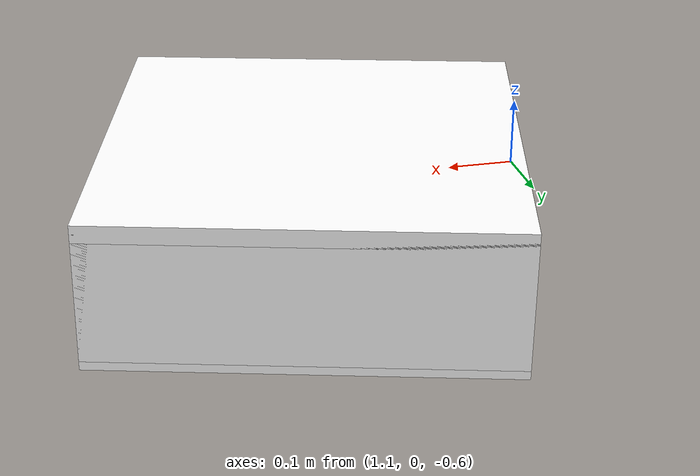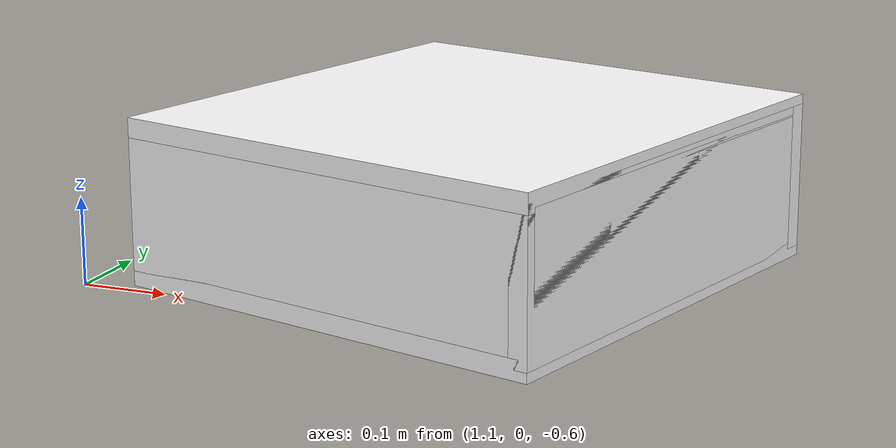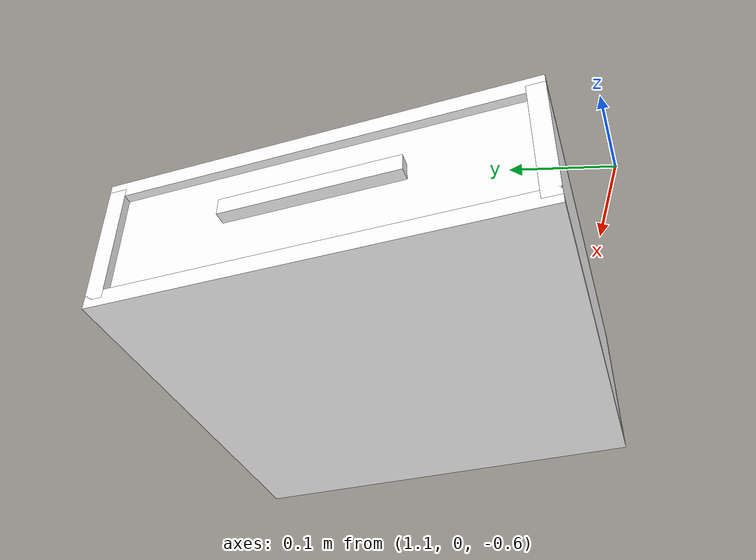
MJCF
<mujoco model="drawer">
        <compiler angle="radian" eulerseq='zxy' />
        <option gravity = "0 0 0" />
        <option>
            <flag contact = "disable"/>
        </option>
        <statistic	extent="1.0" center="0.0 0.0 0.0"/>
        <visual>
            <map fogstart="3" fogend="5" force="0.1" znear=" 0.100000 " zfar=" 12.000000 "/>
        </visual>
        <size njmax="500" nconmax="100" />
        <actuator>
            <velocity joint="drawerJ" name="viva_revolution" kv='10'></velocity>
        </actuator>
        <asset>
            <texture builtin="flat" name="objtex" height="32" width="32" rgb1="1 1 1" type="cube"></texture>
            <texture builtin="flat" name="handletex" height="32" width="32" rgb1="1 1 1" type="cube"></texture>
            <material name="geomObj" shininess="0.03" specular="0.75" texture="objtex"></material>
            <material name="geomHandle" shininess="0.03" specular="0.75" texture="handletex"></material>
        </asset>
        <worldbody>
            <body name="cabinet_bottom" pos= " 1.468088 0.238267 -0.598247 "  quat= " 0.134506 0.000000 0.000000 0.990913" >
                <inertial pos="0 0 0" mass="1" diaginertia="1 1 1" />
                <geom size= " 0.268330 0.275299 0.011385 "  type="box" material="geomObj" name="b"/>
                <body name="cabinet_left" pos= " 0.000000 -0.263914 0.084975 " >
                    <inertial pos="0 0 0" mass="1" diaginertia="1 1 1" />
                    <geom size= " 0.268330 0.011385 0.084975 "  type="box" material="geomObj" name="c" />
                </body>
                <body name="cabinet_right" pos= " 0.000000 0.263914 0.084975 " >
                    <inertial pos="0 0 0" mass="1" diaginertia="1 1 1" />
                    <geom size= " 0.268330 0.011385 0.084975 "  type="box" material="geomObj" name="d" />
                </body>
                <body name="cabinet_top" pos= " 0.000000 0.000000 0.169951 " >
                    <inertial pos="0 0 0" mass="1" diaginertia="1 1 1" />
                    <geom size= " 0.268330 0.275299 0.011385 "  type="box" material="geomObj" name="e"/>
                </body>
                <body name="cabinet_back" pos= " -0.256945 0.000000 0.084975 "  >
                    <inertial pos="0 0 0" mass="1" diaginertia="1 1 1" />
                    <geom size= " 0.011385 0.275299 0.084975 "  type="box" material="geomObj" name="f" />
                </body>
                <body name="drawer" pos= " 0.000000 0.000000 0.005692 "  >
                    <geom size= " 0.256945 0.263914 0.011385 "  type="box" material="geomObj" name="ddddfadfadsfac" />
                    <joint name="drawerJ" pos="0 0 0" axis="1 0 0" type="slide" limited="true" range= "0  0.40249545872211456 "  />
                    <inertial pos="0 0 0" mass="1" diaginertia="1 1 1" />
                    <body name="drawer_left" pos= " 0.000000 -0.252529 0.084975 " >
                        <inertial pos="0 0 0" mass="1" diaginertia="1 1 1" />
                        <geom size= " 0.256945 0.011385 0.073591 "  type="box" material="geomObj" name="ddc" />
                    </body>
                    <body name="drawer_right" pos= " 0.000000 0.252529 0.084975 " >
                        <inertial pos="0 0 0" mass="1" diaginertia="1 1 1" />
                        <geom size= " 0.256945 0.011385 0.073591 "  type="box" material="geomObj" name="dddd" />
                    </body>
                    <body name="drawer_front" pos= " 0.245561 0.000000 0.084975 " >
                        <inertial pos="0 0 0" mass="1" diaginertia="1 1 1" />
                        <geom size= " 0.011385 0.263914 0.073591 "  type="box" material="geomObj" name="eeeee"/>
                    </body>
                    <body name="drawer_back" pos= " -0.256945 0.000000 0.084975 "  >
                        <inertial pos="0 0 0" mass="1" diaginertia="1 1 1" />
                        <geom size= " 0.011385 0.263914 0.073591 "  type="box" material="geomObj" name="fffff" />
                    </body>
                    <body name="knob" pos= " 0.268330 0.000000 0.084975 " >
                        <inertial pos="0 0 0" mass="0.1" diaginertia="0.1 0.1 0.1" />
                        <geom size= " 0.008365 0.111982 0.011152 "  pos="0 0 0" type="box" material="geomHandle" name="handle"/>
                    </body>
                </body>
            </body>
            <body name="external_camera_body_0" pos="0.0 0 0.00">
                <camera euler="-1.57 1.57 0.0" fovy=" 54.280851 " name="external_camera_0" pos="0.0 0 0"></camera>
                <inertial pos= " 0.00 0.0 0.000000 " mass="1" diaginertia="1 1 1" />
                <joint name="cam_j" pos="0.0 0 0" axis = "1 0 0" type="free" />
            </body>
        </worldbody>
    </mujoco>
